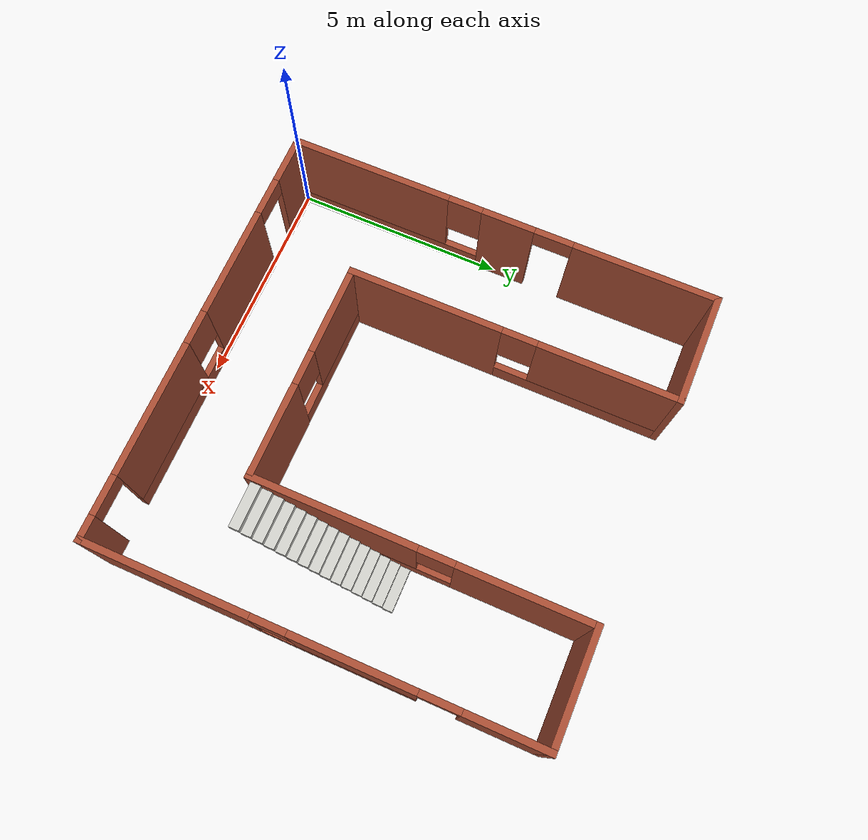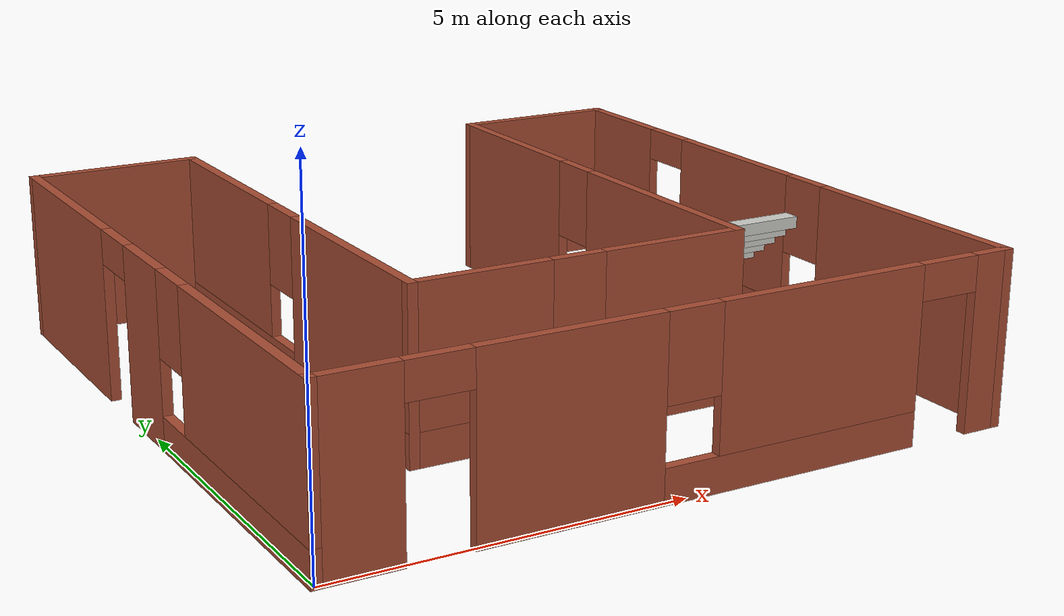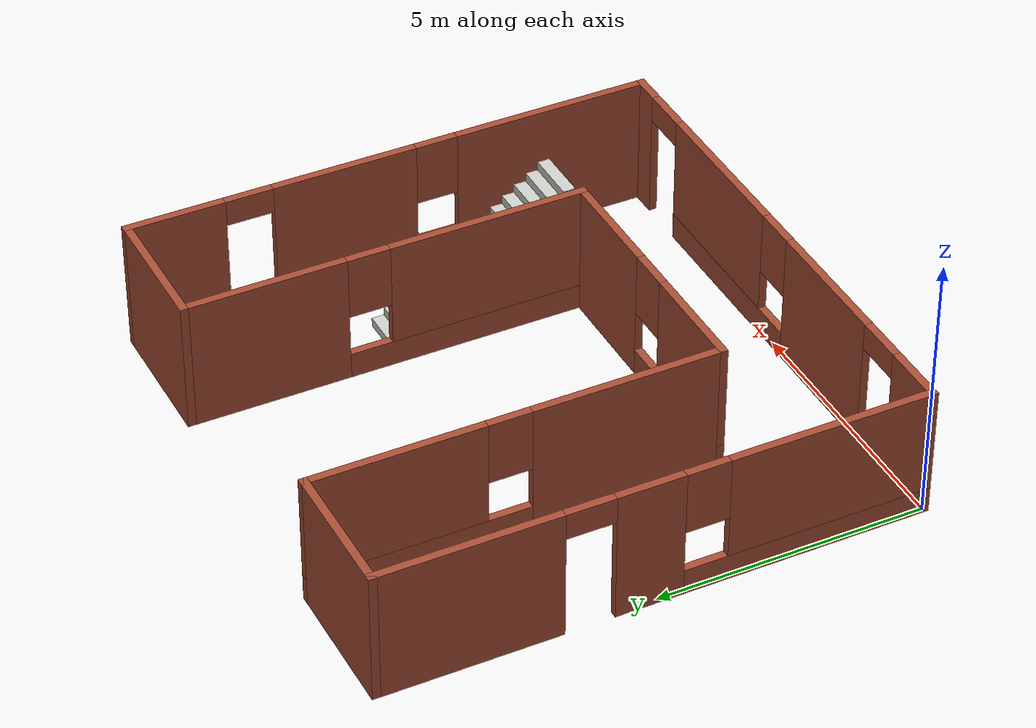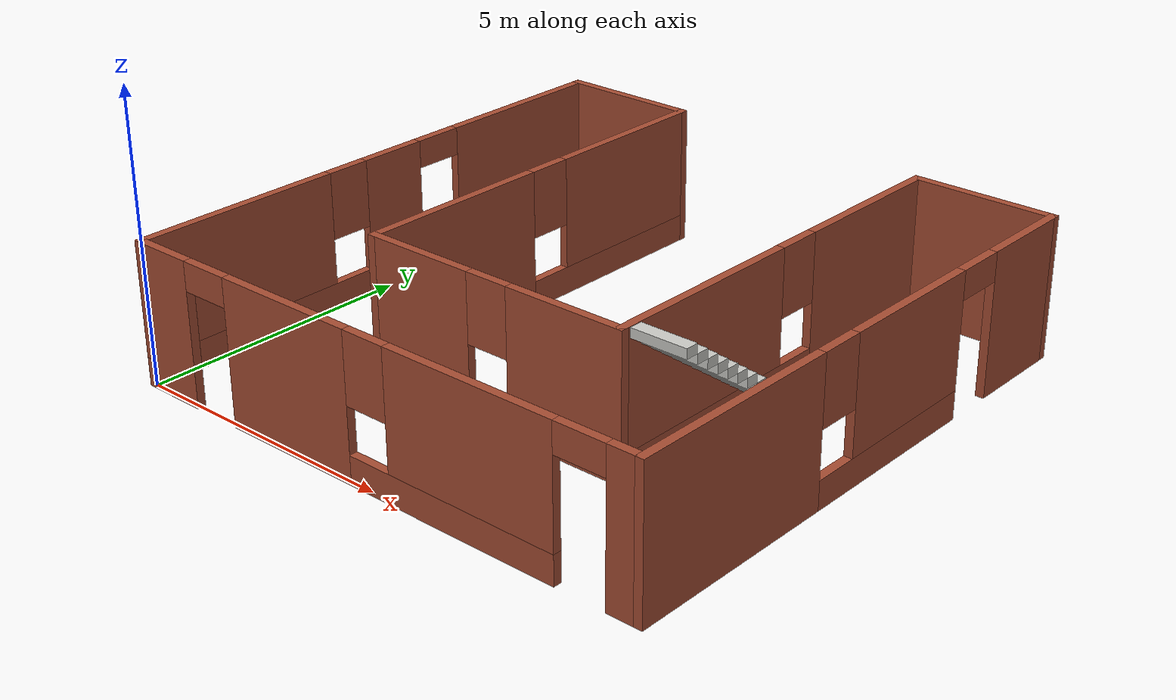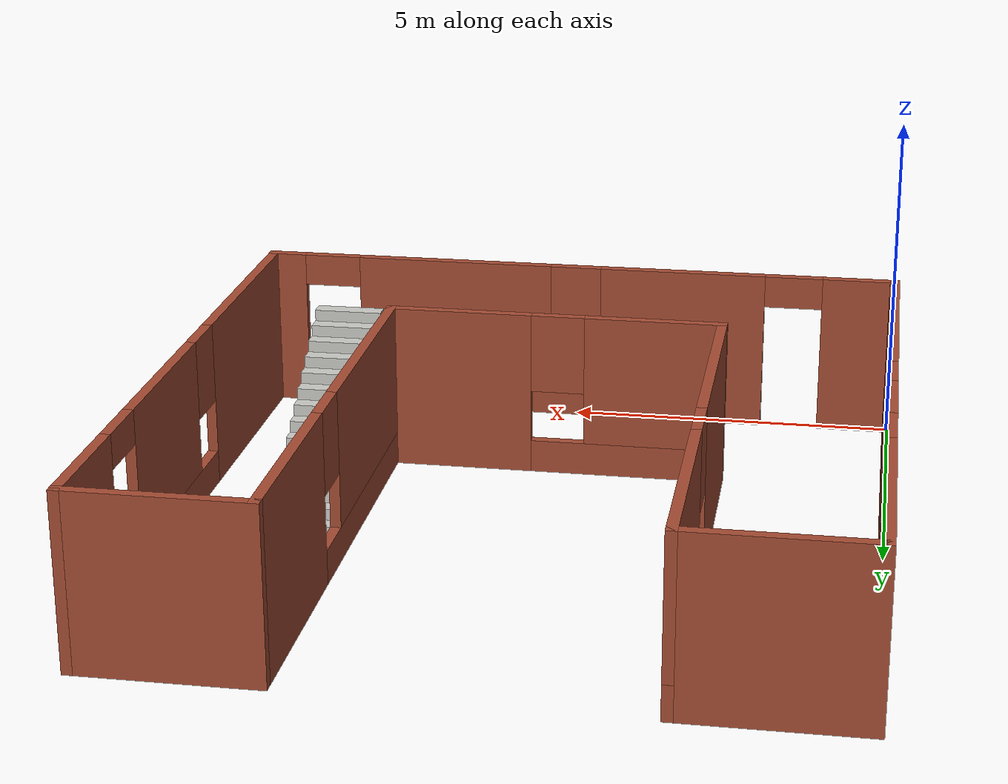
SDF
<?xml version='1.0'?>
<sdf version='1.6'>
  <model name='myBuilding'>
    <pose frame=''>5 5 0 0 -0 0</pose>
    <link name='Stairs_0'>
      <visual name='Stairs_0_Visual_0'>
        <pose frame=''>3.09353 0.973007 0.083333 0 -0 0</pose>
        <geometry>
          <box>
            <size>1 0.233333 0.166667</size>
          </box>
        </geometry>
        <material>
          <script>
            <uri>file://media/materials/scripts/gazebo.material</uri>
            <name>Gazebo/CeilingTiled</name>
          </script>
          <ambient>1 1 1 1</ambient>
        </material>
        <meta>
          <layer>0</layer>
        </meta>
      </visual>
      <collision name='Stairs_0_Collision_0'>
        <geometry>
          <box>
            <size>1 0.233333 0.166667</size>
          </box>
        </geometry>
        <pose frame=''>3.09353 0.973007 0.083333 0 -0 0</pose>
      </collision>
      <visual name='Stairs_0_Visual_1'>
        <pose frame=''>3.09353 0.739674 0.25 0 -0 0</pose>
        <geometry>
          <box>
            <size>1 0.233333 0.166667</size>
          </box>
        </geometry>
        <material>
          <script>
            <uri>file://media/materials/scripts/gazebo.material</uri>
            <name>Gazebo/CeilingTiled</name>
          </script>
          <ambient>1 1 1 1</ambient>
        </material>
        <meta>
          <layer>0</layer>
        </meta>
      </visual>
      <collision name='Stairs_0_Collision_1'>
        <geometry>
          <box>
            <size>1 0.233333 0.166667</size>
          </box>
        </geometry>
        <pose frame=''>3.09353 0.739674 0.25 0 -0 0</pose>
      </collision>
      <visual name='Stairs_0_Visual_2'>
        <pose frame=''>3.09353 0.506341 0.416667 0 -0 0</pose>
        <geometry>
          <box>
            <size>1 0.233333 0.166667</size>
          </box>
        </geometry>
        <material>
          <script>
            <uri>file://media/materials/scripts/gazebo.material</uri>
            <name>Gazebo/CeilingTiled</name>
          </script>
          <ambient>1 1 1 1</ambient>
        </material>
        <meta>
          <layer>0</layer>
        </meta>
      </visual>
      <collision name='Stairs_0_Collision_2'>
        <geometry>
          <box>
            <size>1 0.233333 0.166667</size>
          </box>
        </geometry>
        <pose frame=''>3.09353 0.506341 0.416667 0 -0 0</pose>
      </collision>
      <visual name='Stairs_0_Visual_3'>
        <pose frame=''>3.09353 0.273008 0.583333 0 -0 0</pose>
        <geometry>
          <box>
            <size>1 0.233333 0.166667</size>
          </box>
        </geometry>
        <material>
          <script>
            <uri>file://media/materials/scripts/gazebo.material</uri>
            <name>Gazebo/CeilingTiled</name>
          </script>
          <ambient>1 1 1 1</ambient>
        </material>
        <meta>
          <layer>0</layer>
        </meta>
      </visual>
      <collision name='Stairs_0_Collision_3'>
        <geometry>
          <box>
            <size>1 0.233333 0.166667</size>
          </box>
        </geometry>
        <pose frame=''>3.09353 0.273008 0.583333 0 -0 0</pose>
      </collision>
      <visual name='Stairs_0_Visual_4'>
        <pose frame=''>3.09353 0.039674 0.75 0 -0 0</pose>
        <geometry>
          <box>
            <size>1 0.233333 0.166667</size>
          </box>
        </geometry>
        <material>
          <script>
            <uri>file://media/materials/scripts/gazebo.material</uri>
            <name>Gazebo/CeilingTiled</name>
          </script>
          <ambient>1 1 1 1</ambient>
        </material>
        <meta>
          <layer>0</layer>
        </meta>
      </visual>
      <collision name='Stairs_0_Collision_4'>
        <geometry>
          <box>
            <size>1 0.233333 0.166667</size>
          </box>
        </geometry>
        <pose frame=''>3.09353 0.039674 0.75 0 -0 0</pose>
      </collision>
      <visual name='Stairs_0_Visual_5'>
        <pose frame=''>3.09353 -0.193659 0.916667 0 -0 0</pose>
        <geometry>
          <box>
            <size>1 0.233333 0.166667</size>
          </box>
        </geometry>
        <material>
          <script>
            <uri>file://media/materials/scripts/gazebo.material</uri>
            <name>Gazebo/CeilingTiled</name>
          </script>
          <ambient>1 1 1 1</ambient>
        </material>
        <meta>
          <layer>0</layer>
        </meta>
      </visual>
      <collision name='Stairs_0_Collision_5'>
        <geometry>
          <box>
            <size>1 0.233333 0.166667</size>
          </box>
        </geometry>
        <pose frame=''>3.09353 -0.193659 0.916667 0 -0 0</pose>
      </collision>
      <visual name='Stairs_0_Visual_6'>
        <pose frame=''>3.09353 -0.426993 1.08333 0 -0 0</pose>
        <geometry>
          <box>
            <size>1 0.233333 0.166667</size>
          </box>
        </geometry>
        <material>
          <script>
            <uri>file://media/materials/scripts/gazebo.material</uri>
            <name>Gazebo/CeilingTiled</name>
          </script>
          <ambient>1 1 1 1</ambient>
        </material>
        <meta>
          <layer>0</layer>
        </meta>
      </visual>
      <collision name='Stairs_0_Collision_6'>
        <geometry>
          <box>
            <size>1 0.233333 0.166667</size>
          </box>
        </geometry>
        <pose frame=''>3.09353 -0.426993 1.08333 0 -0 0</pose>
      </collision>
      <visual name='Stairs_0_Visual_7'>
        <pose frame=''>3.09353 -0.660326 1.25 0 -0 0</pose>
        <geometry>
          <box>
            <size>1 0.233333 0.166667</size>
          </box>
        </geometry>
        <material>
          <script>
            <uri>file://media/materials/scripts/gazebo.material</uri>
            <name>Gazebo/CeilingTiled</name>
          </script>
          <ambient>1 1 1 1</ambient>
        </material>
        <meta>
          <layer>0</layer>
        </meta>
      </visual>
      <collision name='Stairs_0_Collision_7'>
        <geometry>
          <box>
            <size>1 0.233333 0.166667</size>
          </box>
        </geometry>
        <pose frame=''>3.09353 -0.660326 1.25 0 -0 0</pose>
      </collision>
      <visual name='Stairs_0_Visual_8'>
        <pose frame=''>3.09353 -0.893659 1.41667 0 -0 0</pose>
        <geometry>
          <box>
            <size>1 0.233333 0.166667</size>
          </box>
        </geometry>
        <material>
          <script>
            <uri>file://media/materials/scripts/gazebo.material</uri>
            <name>Gazebo/CeilingTiled</name>
          </script>
          <ambient>1 1 1 1</ambient>
        </material>
        <meta>
          <layer>0</layer>
        </meta>
      </visual>
      <collision name='Stairs_0_Collision_8'>
        <geometry>
          <box>
            <size>1 0.233333 0.166667</size>
          </box>
        </geometry>
        <pose frame=''>3.09353 -0.893659 1.41667 0 -0 0</pose>
      </collision>
      <visual name='Stairs_0_Visual_9'>
        <pose frame=''>3.09353 -1.12699 1.58333 0 -0 0</pose>
        <geometry>
          <box>
            <size>1 0.233333 0.166667</size>
          </box>
        </geometry>
        <material>
          <script>
            <uri>file://media/materials/scripts/gazebo.material</uri>
            <name>Gazebo/CeilingTiled</name>
          </script>
          <ambient>1 1 1 1</ambient>
        </material>
        <meta>
          <layer>0</layer>
        </meta>
      </visual>
      <collision name='Stairs_0_Collision_9'>
        <geometry>
          <box>
            <size>1 0.233333 0.166667</size>
          </box>
        </geometry>
        <pose frame=''>3.09353 -1.12699 1.58333 0 -0 0</pose>
      </collision>
      <visual name='Stairs_0_Visual_10'>
        <pose frame=''>3.09353 -1.36033 1.75 0 -0 0</pose>
        <geometry>
          <box>
            <size>1 0.233333 0.166667</size>
          </box>
        </geometry>
        <material>
          <script>
            <uri>file://media/materials/scripts/gazebo.material</uri>
            <name>Gazebo/CeilingTiled</name>
          </script>
          <ambient>1 1 1 1</ambient>
        </material>
        <meta>
          <layer>0</layer>
        </meta>
      </visual>
      <collision name='Stairs_0_Collision_10'>
        <geometry>
          <box>
            <size>1 0.233333 0.166667</size>
          </box>
        </geometry>
        <pose frame=''>3.09353 -1.36033 1.75 0 -0 0</pose>
      </collision>
      <visual name='Stairs_0_Visual_11'>
        <pose frame=''>3.09353 -1.59366 1.91667 0 -0 0</pose>
        <geometry>
          <box>
            <size>1 0.233333 0.166667</size>
          </box>
        </geometry>
        <material>
          <script>
            <uri>file://media/materials/scripts/gazebo.material</uri>
            <name>Gazebo/CeilingTiled</name>
          </script>
          <ambient>1 1 1 1</ambient>
        </material>
        <meta>
          <layer>0</layer>
        </meta>
      </visual>
      <collision name='Stairs_0_Collision_11'>
        <geometry>
          <box>
            <size>1 0.233333 0.166667</size>
          </box>
        </geometry>
        <pose frame=''>3.09353 -1.59366 1.91667 0 -0 0</pose>
      </collision>
      <visual name='Stairs_0_Visual_12'>
        <pose frame=''>3.09353 -1.82699 2.08333 0 -0 0</pose>
        <geometry>
          <box>
            <size>1 0.233333 0.166667</size>
          </box>
        </geometry>
        <material>
          <script>
            <uri>file://media/materials/scripts/gazebo.material</uri>
            <name>Gazebo/CeilingTiled</name>
          </script>
          <ambient>1 1 1 1</ambient>
        </material>
        <meta>
          <layer>0</layer>
        </meta>
      </visual>
      <collision name='Stairs_0_Collision_12'>
        <geometry>
          <box>
            <size>1 0.233333 0.166667</size>
          </box>
        </geometry>
        <pose frame=''>3.09353 -1.82699 2.08333 0 -0 0</pose>
      </collision>
      <visual name='Stairs_0_Visual_13'>
        <pose frame=''>3.09353 -2.06033 2.25 0 -0 0</pose>
        <geometry>
          <box>
            <size>1 0.233333 0.166667</size>
          </box>
        </geometry>
        <material>
          <script>
            <uri>file://media/materials/scripts/gazebo.material</uri>
            <name>Gazebo/CeilingTiled</name>
          </script>
          <ambient>1 1 1 1</ambient>
        </material>
        <meta>
          <layer>0</layer>
        </meta>
      </visual>
      <collision name='Stairs_0_Collision_13'>
        <geometry>
          <box>
            <size>1 0.233333 0.166667</size>
          </box>
        </geometry>
        <pose frame=''>3.09353 -2.06033 2.25 0 -0 0</pose>
      </collision>
      <visual name='Stairs_0_Visual_14'>
        <pose frame=''>3.09353 -2.29366 2.41667 0 -0 0</pose>
        <geometry>
          <box>
            <size>1 0.233333 0.166667</size>
          </box>
        </geometry>
        <material>
          <script>
            <uri>file://media/materials/scripts/gazebo.material</uri>
            <name>Gazebo/CeilingTiled</name>
          </script>
          <ambient>1 1 1 1</ambient>
        </material>
        <meta>
          <layer>0</layer>
        </meta>
      </visual>
      <collision name='Stairs_0_Collision_14'>
        <geometry>
          <box>
            <size>1 0.233333 0.166667</size>
          </box>
        </geometry>
        <pose frame=''>3.09353 -2.29366 2.41667 0 -0 0</pose>
      </collision>
    </link>
    <link name='Wall_0'>
      <pose frame=''>-5 -0 0 0 -0 -1.5708</pose>
      <visual name='Wall_0_Visual_0'>
        <pose frame=''>-3.38272 0 1.25 0 -0 0</pose>
        <geometry>
          <box>
            <size>3.38456 0.15 2.5</size>
          </box>
        </geometry>
        <material>
          <script>
            <uri>file://media/materials/scripts/gazebo.material</uri>
            <name>Gazebo/Bricks</name>
          </script>
          <ambient>1 1 1 1</ambient>
        </material>
        <meta>
          <layer>0</layer>
        </meta>
      </visual>
      <collision name='Wall_0_Collision_0'>
        <geometry>
          <box>
            <size>3.38456 0.15 2.5</size>
          </box>
        </geometry>
        <pose frame=''>-3.38272 0 1.25 0 -0 0</pose>
      </collision>
      <visual name='Wall_0_Visual_1'>
        <pose frame=''>-0.167876 0 1.25 0 -0 0</pose>
        <geometry>
          <box>
            <size>1.24514 0.15 2.5</size>
          </box>
        </geometry>
        <material>
          <script>
            <uri>file://media/materials/scripts/gazebo.material</uri>
            <name>Gazebo/Bricks</name>
          </script>
          <ambient>1 1 1 1</ambient>
        </material>
        <meta>
          <layer>0</layer>
        </meta>
      </visual>
      <collision name='Wall_0_Collision_1'>
        <geometry>
          <box>
            <size>1.24514 0.15 2.5</size>
          </box>
        </geometry>
        <pose frame=''>-0.167876 0 1.25 0 -0 0</pose>
      </collision>
      <visual name='Wall_0_Visual_2'>
        <pose frame=''>2.76485 0 0.25 0 -0 0</pose>
        <geometry>
          <box>
            <size>4.62031 0.15 0.5</size>
          </box>
        </geometry>
        <material>
          <script>
            <uri>file://media/materials/scripts/gazebo.material</uri>
            <name>Gazebo/Bricks</name>
          </script>
          <ambient>1 1 1 1</ambient>
        </material>
        <meta>
          <layer>0</layer>
        </meta>
      </visual>
      <collision name='Wall_0_Collision_2'>
        <geometry>
          <box>
            <size>4.62031 0.15 0.5</size>
          </box>
        </geometry>
        <pose frame=''>2.76485 0 0.25 0 -0 0</pose>
      </collision>
      <visual name='Wall_0_Visual_3'>
        <pose frame=''>3.16485 0 1.5 0 -0 0</pose>
        <geometry>
          <box>
            <size>3.82031 0.15 2</size>
          </box>
        </geometry>
        <material>
          <script>
            <uri>file://media/materials/scripts/gazebo.material</uri>
            <name>Gazebo/Bricks</name>
          </script>
          <ambient>1 1 1 1</ambient>
        </material>
        <meta>
          <layer>0</layer>
        </meta>
      </visual>
      <collision name='Wall_0_Collision_3'>
        <geometry>
          <box>
            <size>3.82031 0.15 2</size>
          </box>
        </geometry>
        <pose frame=''>3.16485 0 1.5 0 -0 0</pose>
      </collision>
      <visual name='Wall_0_Visual_4'>
        <pose frame=''>0.854692 0 1.9 0 -0 0</pose>
        <geometry>
          <box>
            <size>0.8 0.15 1.2</size>
          </box>
        </geometry>
        <material>
          <script>
            <uri>file://media/materials/scripts/gazebo.material</uri>
            <name>Gazebo/Bricks</name>
          </script>
          <ambient>1 1 1 1</ambient>
        </material>
        <meta>
          <layer>0</layer>
        </meta>
      </visual>
      <collision name='Wall_0_Collision_4'>
        <geometry>
          <box>
            <size>0.8 0.15 1.2</size>
          </box>
        </geometry>
        <pose frame=''>0.854692 0 1.9 0 -0 0</pose>
      </collision>
      <visual name='Wall_0_Visual_5'>
        <pose frame=''>-1.24044 0 2.25 0 -0 0</pose>
        <geometry>
          <box>
            <size>0.9 0.15 0.5</size>
          </box>
        </geometry>
        <material>
          <script>
            <uri>file://media/materials/scripts/gazebo.material</uri>
            <name>Gazebo/Bricks</name>
          </script>
          <ambient>1 1 1 1</ambient>
        </material>
        <meta>
          <layer>0</layer>
        </meta>
      </visual>
      <collision name='Wall_0_Collision_5'>
        <geometry>
          <box>
            <size>0.9 0.15 0.5</size>
          </box>
        </geometry>
        <pose frame=''>-1.24044 0 2.25 0 -0 0</pose>
      </collision>
    </link>
    <link name='Wall_1'>
      <pose frame=''>-0 -5 0 0 -0 0</pose>
      <visual name='Wall_1_Visual_0'>
        <pose frame=''>-4.47931 0 1.25 0 -0 0</pose>
        <geometry>
          <box>
            <size>1.19138 0.15 2.5</size>
          </box>
        </geometry>
        <material>
          <script>
            <uri>file://media/materials/scripts/gazebo.material</uri>
            <name>Gazebo/Bricks</name>
          </script>
          <ambient>0.996078 0.47451 0.0196078 1</ambient>
        </material>
        <meta>
          <layer>0</layer>
        </meta>
      </visual>
      <collision name='Wall_1_Collision_0'>
        <geometry>
          <box>
            <size>1.19138 0.15 2.5</size>
          </box>
        </geometry>
        <pose frame=''>-4.47931 0 1.25 0 -0 0</pose>
      </collision>
      <visual name='Wall_1_Visual_1'>
        <pose frame=''>-1.67805 0 1.25 0 -0 0</pose>
        <geometry>
          <box>
            <size>2.61112 0.15 2.5</size>
          </box>
        </geometry>
        <material>
          <script>
            <uri>file://media/materials/scripts/gazebo.material</uri>
            <name>Gazebo/Bricks</name>
          </script>
          <ambient>0.996078 0.47451 0.0196078 1</ambient>
        </material>
        <meta>
          <layer>0</layer>
        </meta>
      </visual>
      <collision name='Wall_1_Collision_1'>
        <geometry>
          <box>
            <size>2.61112 0.15 2.5</size>
          </box>
        </geometry>
        <pose frame=''>-1.67805 0 1.25 0 -0 0</pose>
      </collision>
      <visual name='Wall_1_Visual_2'>
        <pose frame=''>4.7676 0 1.25 0 -0 0</pose>
        <geometry>
          <box>
            <size>0.61479 0.15 2.5</size>
          </box>
        </geometry>
        <material>
          <script>
            <uri>file://media/materials/scripts/gazebo.material</uri>
            <name>Gazebo/Bricks</name>
          </script>
          <ambient>0.996078 0.47451 0.0196078 1</ambient>
        </material>
        <meta>
          <layer>0</layer>
        </meta>
      </visual>
      <collision name='Wall_1_Collision_2'>
        <geometry>
          <box>
            <size>0.61479 0.15 2.5</size>
          </box>
        </geometry>
        <pose frame=''>4.7676 0 1.25 0 -0 0</pose>
      </collision>
      <visual name='Wall_1_Visual_3'>
        <pose frame=''>1.59386 0 0.25 0 -0 0</pose>
        <geometry>
          <box>
            <size>3.9327 0.15 0.5</size>
          </box>
        </geometry>
        <material>
          <script>
            <uri>file://media/materials/scripts/gazebo.material</uri>
            <name>Gazebo/Bricks</name>
          </script>
          <ambient>0.996078 0.47451 0.0196078 1</ambient>
        </material>
        <meta>
          <layer>0</layer>
        </meta>
      </visual>
      <collision name='Wall_1_Collision_3'>
        <geometry>
          <box>
            <size>3.9327 0.15 0.5</size>
          </box>
        </geometry>
        <pose frame=''>1.59386 0 0.25 0 -0 0</pose>
      </collision>
      <visual name='Wall_1_Visual_4'>
        <pose frame=''>1.99386 0 1.5 0 -0 0</pose>
        <geometry>
          <box>
            <size>3.1327 0.15 2</size>
          </box>
        </geometry>
        <material>
          <script>
            <uri>file://media/materials/scripts/gazebo.material</uri>
            <name>Gazebo/Bricks</name>
          </script>
          <ambient>0.996078 0.47451 0.0196078 1</ambient>
        </material>
        <meta>
          <layer>0</layer>
        </meta>
      </visual>
      <collision name='Wall_1_Collision_4'>
        <geometry>
          <box>
            <size>3.1327 0.15 2</size>
          </box>
        </geometry>
        <pose frame=''>1.99386 0 1.5 0 -0 0</pose>
      </collision>
      <visual name='Wall_1_Visual_5'>
        <pose frame=''>0.027508 0 1.9 0 -0 0</pose>
        <geometry>
          <box>
            <size>0.8 0.15 1.2</size>
          </box>
        </geometry>
        <material>
          <script>
            <uri>file://media/materials/scripts/gazebo.material</uri>
            <name>Gazebo/Bricks</name>
          </script>
          <ambient>0.996078 0.47451 0.0196078 1</ambient>
        </material>
        <meta>
          <layer>0</layer>
        </meta>
      </visual>
      <collision name='Wall_1_Collision_5'>
        <geometry>
          <box>
            <size>0.8 0.15 1.2</size>
          </box>
        </geometry>
        <pose frame=''>0.027508 0 1.9 0 -0 0</pose>
      </collision>
      <visual name='Wall_1_Visual_6'>
        <pose frame=''>-3.43362 0 2.25 0 -0 0</pose>
        <geometry>
          <box>
            <size>0.9 0.15 0.5</size>
          </box>
        </geometry>
        <material>
          <script>
            <uri>file://media/materials/scripts/gazebo.material</uri>
            <name>Gazebo/Bricks</name>
          </script>
          <ambient>0.996078 0.47451 0.0196078 1</ambient>
        </material>
        <meta>
          <layer>0</layer>
        </meta>
      </visual>
      <collision name='Wall_1_Collision_6'>
        <geometry>
          <box>
            <size>0.9 0.15 0.5</size>
          </box>
        </geometry>
        <pose frame=''>-3.43362 0 2.25 0 -0 0</pose>
      </collision>
      <visual name='Wall_1_Visual_7'>
        <pose frame=''>4.01021 0 2.25 0 -0 0</pose>
        <geometry>
          <box>
            <size>0.9 0.15 0.5</size>
          </box>
        </geometry>
        <material>
          <script>
            <uri>file://media/materials/scripts/gazebo.material</uri>
            <name>Gazebo/Bricks</name>
          </script>
          <ambient>0.996078 0.47451 0.0196078 1</ambient>
        </material>
        <meta>
          <layer>0</layer>
        </meta>
      </visual>
      <collision name='Wall_1_Collision_7'>
        <geometry>
          <box>
            <size>0.9 0.15 0.5</size>
          </box>
        </geometry>
        <pose frame=''>4.01021 0 2.25 0 -0 0</pose>
      </collision>
    </link>
    <link name='Wall_2'>
      <pose frame=''>5 -0 0 0 -0 1.5708</pose>
      <visual name='Wall_2_Visual_0'>
        <pose frame=''>-3.16485 0 1.25 0 -0 0</pose>
        <geometry>
          <box>
            <size>3.82031 0.15 2.5</size>
          </box>
        </geometry>
        <material>
          <script>
            <uri>file://media/materials/scripts/gazebo.material</uri>
            <name>Gazebo/Bricks</name>
          </script>
          <ambient>1 1 1 1</ambient>
        </material>
        <meta>
          <layer>0</layer>
        </meta>
      </visual>
      <collision name='Wall_2_Collision_0'>
        <geometry>
          <box>
            <size>3.82031 0.15 2.5</size>
          </box>
        </geometry>
        <pose frame=''>-3.16485 0 1.25 0 -0 0</pose>
      </collision>
      <visual name='Wall_2_Visual_1'>
        <pose frame=''>4.13543 0 1.25 0 -0 0</pose>
        <geometry>
          <box>
            <size>1.87915 0.15 2.5</size>
          </box>
        </geometry>
        <material>
          <script>
            <uri>file://media/materials/scripts/gazebo.material</uri>
            <name>Gazebo/Bricks</name>
          </script>
          <ambient>1 1 1 1</ambient>
        </material>
        <meta>
          <layer>0</layer>
        </meta>
      </visual>
      <collision name='Wall_2_Collision_1'>
        <geometry>
          <box>
            <size>1.87915 0.15 2.5</size>
          </box>
        </geometry>
        <pose frame=''>4.13543 0 1.25 0 -0 0</pose>
      </collision>
      <visual name='Wall_2_Visual_2'>
        <pose frame=''>0.520581 0 0.25 0 -0 0</pose>
        <geometry>
          <box>
            <size>3.55055 0.15 0.5</size>
          </box>
        </geometry>
        <material>
          <script>
            <uri>file://media/materials/scripts/gazebo.material</uri>
            <name>Gazebo/Bricks</name>
          </script>
          <ambient>1 1 1 1</ambient>
        </material>
        <meta>
          <layer>0</layer>
        </meta>
      </visual>
      <collision name='Wall_2_Collision_2'>
        <geometry>
          <box>
            <size>3.55055 0.15 0.5</size>
          </box>
        </geometry>
        <pose frame=''>0.520581 0 0.25 0 -0 0</pose>
      </collision>
      <visual name='Wall_2_Visual_3'>
        <pose frame=''>0.920581 0 1.5 0 -0 0</pose>
        <geometry>
          <box>
            <size>2.75055 0.15 2</size>
          </box>
        </geometry>
        <material>
          <script>
            <uri>file://media/materials/scripts/gazebo.material</uri>
            <name>Gazebo/Bricks</name>
          </script>
          <ambient>1 1 1 1</ambient>
        </material>
        <meta>
          <layer>0</layer>
        </meta>
      </visual>
      <collision name='Wall_2_Collision_3'>
        <geometry>
          <box>
            <size>2.75055 0.15 2</size>
          </box>
        </geometry>
        <pose frame=''>0.920581 0 1.5 0 -0 0</pose>
      </collision>
      <visual name='Wall_2_Visual_4'>
        <pose frame=''>-0.854692 0 1.9 0 -0 0</pose>
        <geometry>
          <box>
            <size>0.8 0.15 1.2</size>
          </box>
        </geometry>
        <material>
          <script>
            <uri>file://media/materials/scripts/gazebo.material</uri>
            <name>Gazebo/Bricks</name>
          </script>
          <ambient>1 1 1 1</ambient>
        </material>
        <meta>
          <layer>0</layer>
        </meta>
      </visual>
      <collision name='Wall_2_Collision_4'>
        <geometry>
          <box>
            <size>0.8 0.15 1.2</size>
          </box>
        </geometry>
        <pose frame=''>-0.854692 0 1.9 0 -0 0</pose>
      </collision>
      <visual name='Wall_2_Visual_5'>
        <pose frame=''>2.74585 0 2.25 0 -0 0</pose>
        <geometry>
          <box>
            <size>0.9 0.15 0.5</size>
          </box>
        </geometry>
        <material>
          <script>
            <uri>file://media/materials/scripts/gazebo.material</uri>
            <name>Gazebo/Bricks</name>
          </script>
          <ambient>1 1 1 1</ambient>
        </material>
        <meta>
          <layer>0</layer>
        </meta>
      </visual>
      <collision name='Wall_2_Collision_5'>
        <geometry>
          <box>
            <size>0.9 0.15 0.5</size>
          </box>
        </geometry>
        <pose frame=''>2.74585 0 2.25 0 -0 0</pose>
      </collision>
    </link>
    <link name='Wall_3'>
      <collision name='Wall_3_Collision'>
        <geometry>
          <box>
            <size>2.65 0.15 2.5</size>
          </box>
        </geometry>
        <pose frame=''>0 0 1.25 0 -0 0</pose>
      </collision>
      <visual name='Wall_3_Visual'>
        <pose frame=''>0 0 1.25 0 -0 0</pose>
        <geometry>
          <box>
            <size>2.65 0.15 2.5</size>
          </box>
        </geometry>
        <material>
          <script>
            <uri>file://media/materials/scripts/gazebo.material</uri>
            <name>Gazebo/Bricks</name>
          </script>
          <ambient>1 1 1 1</ambient>
        </material>
        <meta>
          <layer>0</layer>
        </meta>
      </visual>
      <pose frame=''>3.75 5 0 0 -0 3.14159</pose>
    </link>
    <link name='Wall_4'>
      <pose frame=''>2.5 1.25 0 0 -0 -1.5708</pose>
      <visual name='Wall_4_Visual_0'>
        <pose frame=''>-2.29405 0 1.25 0 -0 0</pose>
        <geometry>
          <box>
            <size>3.0619 0.15 2.5</size>
          </box>
        </geometry>
        <material>
          <script>
            <uri>file://media/materials/scripts/gazebo.material</uri>
            <name>Gazebo/Bricks</name>
          </script>
          <ambient>1 1 1 1</ambient>
        </material>
        <meta>
          <layer>0</layer>
        </meta>
      </visual>
      <collision name='Wall_4_Collision_0'>
        <geometry>
          <box>
            <size>3.0619 0.15 2.5</size>
          </box>
        </geometry>
        <pose frame=''>-2.29405 0 1.25 0 -0 0</pose>
      </collision>
      <visual name='Wall_4_Visual_1'>
        <pose frame=''>1.53095 0 0.25 0 -0 0</pose>
        <geometry>
          <box>
            <size>4.5881 0.15 0.5</size>
          </box>
        </geometry>
        <material>
          <script>
            <uri>file://media/materials/scripts/gazebo.material</uri>
            <name>Gazebo/Bricks</name>
          </script>
          <ambient>1 1 1 1</ambient>
        </material>
        <meta>
          <layer>0</layer>
        </meta>
      </visual>
      <collision name='Wall_4_Collision_1'>
        <geometry>
          <box>
            <size>4.5881 0.15 0.5</size>
          </box>
        </geometry>
        <pose frame=''>1.53095 0 0.25 0 -0 0</pose>
      </collision>
      <visual name='Wall_4_Visual_2'>
        <pose frame=''>1.93095 0 1.5 0 -0 0</pose>
        <geometry>
          <box>
            <size>3.7881 0.15 2</size>
          </box>
        </geometry>
        <material>
          <script>
            <uri>file://media/materials/scripts/gazebo.material</uri>
            <name>Gazebo/Bricks</name>
          </script>
          <ambient>1 1 1 1</ambient>
        </material>
        <meta>
          <layer>0</layer>
        </meta>
      </visual>
      <collision name='Wall_4_Collision_2'>
        <geometry>
          <box>
            <size>3.7881 0.15 2</size>
          </box>
        </geometry>
        <pose frame=''>1.93095 0 1.5 0 -0 0</pose>
      </collision>
      <visual name='Wall_4_Visual_3'>
        <pose frame=''>-0.363098 0 1.9 0 -0 0</pose>
        <geometry>
          <box>
            <size>0.8 0.15 1.2</size>
          </box>
        </geometry>
        <material>
          <script>
            <uri>file://media/materials/scripts/gazebo.material</uri>
            <name>Gazebo/Bricks</name>
          </script>
          <ambient>1 1 1 1</ambient>
        </material>
        <meta>
          <layer>0</layer>
        </meta>
      </visual>
      <collision name='Wall_4_Collision_3'>
        <geometry>
          <box>
            <size>0.8 0.15 1.2</size>
          </box>
        </geometry>
        <pose frame=''>-0.363098 0 1.9 0 -0 0</pose>
      </collision>
    </link>
    <link name='Wall_5'>
      <pose frame=''>-0 -2.5 0 0 -0 3.14159</pose>
      <visual name='Wall_5_Visual_0'>
        <pose frame=''>-1.4608 0 1.25 0 -0 0</pose>
        <geometry>
          <box>
            <size>2.2284 0.15 2.5</size>
          </box>
        </geometry>
        <material>
          <script>
            <uri>file://media/materials/scripts/gazebo.material</uri>
            <name>Gazebo/Bricks</name>
          </script>
          <ambient>1 1 1 1</ambient>
        </material>
        <meta>
          <layer>0</layer>
        </meta>
      </visual>
      <collision name='Wall_5_Collision_0'>
        <geometry>
          <box>
            <size>2.2284 0.15 2.5</size>
          </box>
        </geometry>
        <pose frame=''>-1.4608 0 1.25 0 -0 0</pose>
      </collision>
      <visual name='Wall_5_Visual_1'>
        <pose frame=''>1.1142 0 0.25 0 -0 0</pose>
        <geometry>
          <box>
            <size>2.9216 0.15 0.5</size>
          </box>
        </geometry>
        <material>
          <script>
            <uri>file://media/materials/scripts/gazebo.material</uri>
            <name>Gazebo/Bricks</name>
          </script>
          <ambient>1 1 1 1</ambient>
        </material>
        <meta>
          <layer>0</layer>
        </meta>
      </visual>
      <collision name='Wall_5_Collision_1'>
        <geometry>
          <box>
            <size>2.9216 0.15 0.5</size>
          </box>
        </geometry>
        <pose frame=''>1.1142 0 0.25 0 -0 0</pose>
      </collision>
      <visual name='Wall_5_Visual_2'>
        <pose frame=''>1.5142 0 1.5 0 -0 0</pose>
        <geometry>
          <box>
            <size>2.1216 0.15 2</size>
          </box>
        </geometry>
        <material>
          <script>
            <uri>file://media/materials/scripts/gazebo.material</uri>
            <name>Gazebo/Bricks</name>
          </script>
          <ambient>1 1 1 1</ambient>
        </material>
        <meta>
          <layer>0</layer>
        </meta>
      </visual>
      <collision name='Wall_5_Collision_2'>
        <geometry>
          <box>
            <size>2.1216 0.15 2</size>
          </box>
        </geometry>
        <pose frame=''>1.5142 0 1.5 0 -0 0</pose>
      </collision>
      <visual name='Wall_5_Visual_3'>
        <pose frame=''>0.053403 0 1.9 0 -0 0</pose>
        <geometry>
          <box>
            <size>0.8 0.15 1.2</size>
          </box>
        </geometry>
        <material>
          <script>
            <uri>file://media/materials/scripts/gazebo.material</uri>
            <name>Gazebo/Bricks</name>
          </script>
          <ambient>1 1 1 1</ambient>
        </material>
        <meta>
          <layer>0</layer>
        </meta>
      </visual>
      <collision name='Wall_5_Collision_3'>
        <geometry>
          <box>
            <size>0.8 0.15 1.2</size>
          </box>
        </geometry>
        <pose frame=''>0.053403 0 1.9 0 -0 0</pose>
      </collision>
    </link>
    <link name='Wall_6'>
      <pose frame=''>-2.5 1.25 0 0 -0 1.5708</pose>
      <visual name='Wall_6_Visual_0'>
        <pose frame=''>-2.03209 0 1.25 0 -0 0</pose>
        <geometry>
          <box>
            <size>3.58582 0.15 2.5</size>
          </box>
        </geometry>
        <material>
          <script>
            <uri>file://media/materials/scripts/gazebo.material</uri>
            <name>Gazebo/Bricks</name>
          </script>
          <ambient>1 1 1 1</ambient>
        </material>
        <meta>
          <layer>0</layer>
        </meta>
      </visual>
      <collision name='Wall_6_Collision_0'>
        <geometry>
          <box>
            <size>3.58582 0.15 2.5</size>
          </box>
        </geometry>
        <pose frame=''>-2.03209 0 1.25 0 -0 0</pose>
      </collision>
      <visual name='Wall_6_Visual_1'>
        <pose frame=''>1.79291 0 0.25 0 -0 0</pose>
        <geometry>
          <box>
            <size>4.06418 0.15 0.5</size>
          </box>
        </geometry>
        <material>
          <script>
            <uri>file://media/materials/scripts/gazebo.material</uri>
            <name>Gazebo/Bricks</name>
          </script>
          <ambient>1 1 1 1</ambient>
        </material>
        <meta>
          <layer>0</layer>
        </meta>
      </visual>
      <collision name='Wall_6_Collision_1'>
        <geometry>
          <box>
            <size>4.06418 0.15 0.5</size>
          </box>
        </geometry>
        <pose frame=''>1.79291 0 0.25 0 -0 0</pose>
      </collision>
      <visual name='Wall_6_Visual_2'>
        <pose frame=''>2.19291 0 1.5 0 -0 0</pose>
        <geometry>
          <box>
            <size>3.26418 0.15 2</size>
          </box>
        </geometry>
        <material>
          <script>
            <uri>file://media/materials/scripts/gazebo.material</uri>
            <name>Gazebo/Bricks</name>
          </script>
          <ambient>1 1 1 1</ambient>
        </material>
        <meta>
          <layer>0</layer>
        </meta>
      </visual>
      <collision name='Wall_6_Collision_2'>
        <geometry>
          <box>
            <size>3.26418 0.15 2</size>
          </box>
        </geometry>
        <pose frame=''>2.19291 0 1.5 0 -0 0</pose>
      </collision>
      <visual name='Wall_6_Visual_3'>
        <pose frame=''>0.16082 0 1.9 0 -0 0</pose>
        <geometry>
          <box>
            <size>0.8 0.15 1.2</size>
          </box>
        </geometry>
        <material>
          <script>
            <uri>file://media/materials/scripts/gazebo.material</uri>
            <name>Gazebo/Bricks</name>
          </script>
          <ambient>1 1 1 1</ambient>
        </material>
        <meta>
          <layer>0</layer>
        </meta>
      </visual>
      <collision name='Wall_6_Collision_3'>
        <geometry>
          <box>
            <size>0.8 0.15 1.2</size>
          </box>
        </geometry>
        <pose frame=''>0.16082 0 1.9 0 -0 0</pose>
      </collision>
    </link>
    <link name='Wall_7'>
      <collision name='Wall_7_Collision'>
        <geometry>
          <box>
            <size>2.65 0.15 2.5</size>
          </box>
        </geometry>
        <pose frame=''>0 0 1.25 0 -0 0</pose>
      </collision>
      <visual name='Wall_7_Visual'>
        <pose frame=''>0 0 1.25 0 -0 0</pose>
        <geometry>
          <box>
            <size>2.65 0.15 2.5</size>
          </box>
        </geometry>
        <material>
          <script>
            <uri>file://media/materials/scripts/gazebo.material</uri>
            <name>Gazebo/Bricks</name>
          </script>
          <ambient>1 1 1 1</ambient>
        </material>
        <meta>
          <layer>0</layer>
        </meta>
      </visual>
      <pose frame=''>-3.75 5 0 0 -0 3.14159</pose>
    </link>
    <static>1</static>
  </model>
</sdf>
